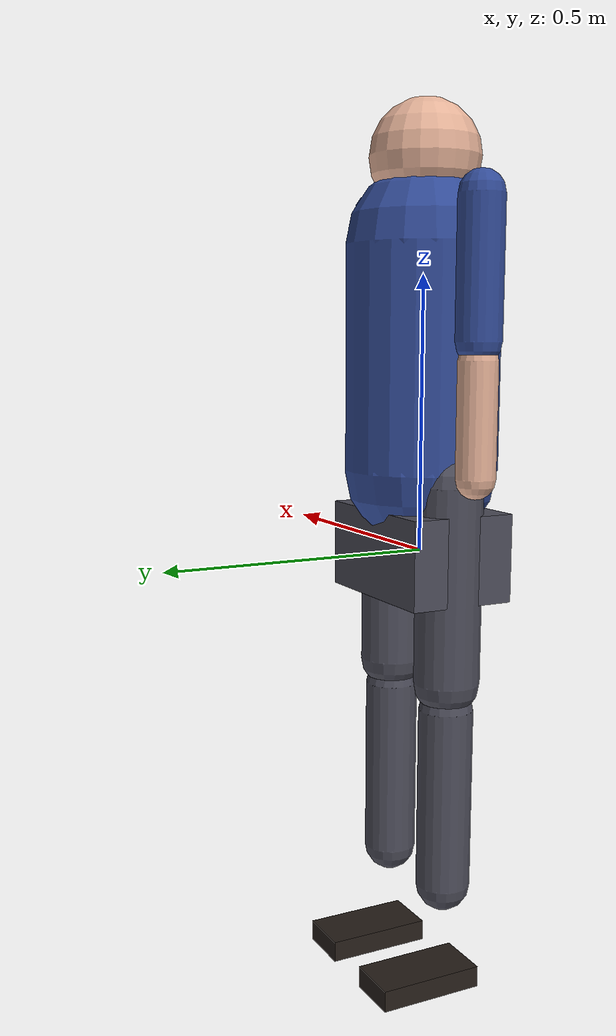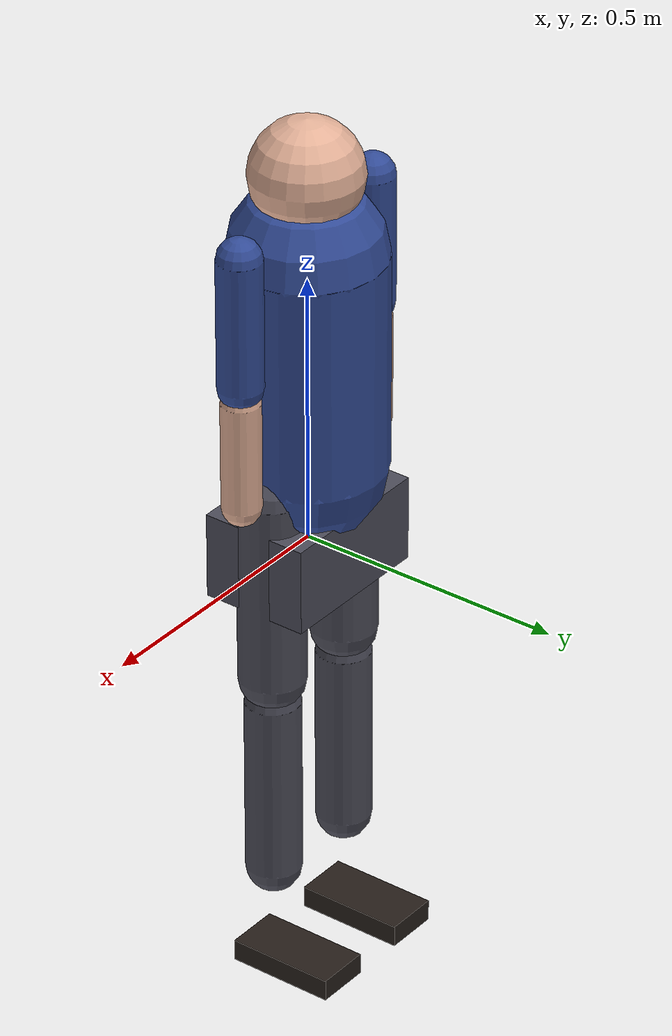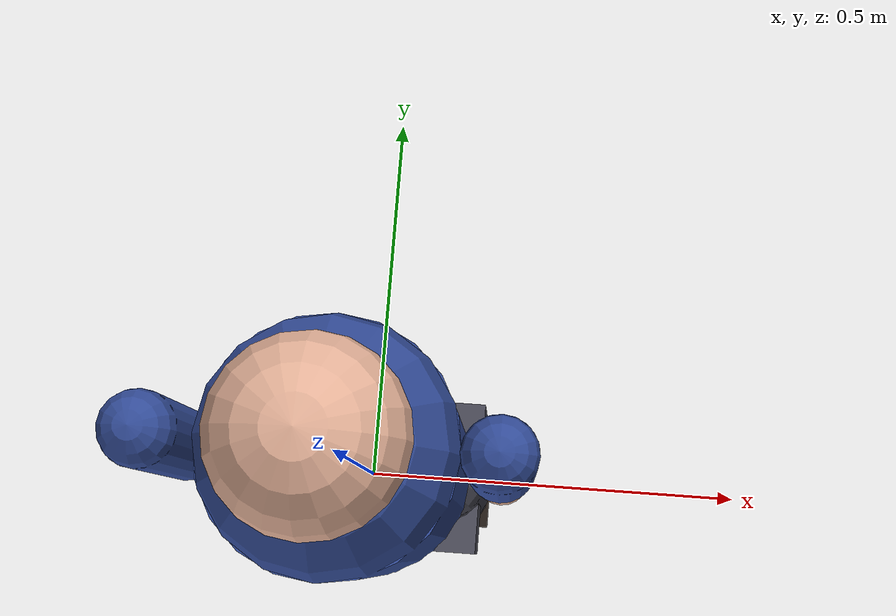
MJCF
<mujoco>
  <!-- Walking humanoid with articulated legs -->
  <compiler angle="degree"/>

  <default>
    <joint damping="2" armature="0.1"/>
    <geom friction="1 0.5 0.1" condim="3"/>
  </default>

  <asset>
    <material name="human_skin" rgba="0.9 0.7 0.6 1"/>
    <material name="human_clothes" rgba="0.2 0.3 0.6 1"/>
    <material name="human_pants" rgba="0.3 0.3 0.35 1"/>
    <material name="human_shoes" rgba="0.15 0.12 0.1 1"/>
  </asset>

  <worldbody>
    <body name="human_pelvis">
      <!-- Freejoint for walking motion -->
      <freejoint name="human_root"/>
      <inertial pos="0 0 0" mass="15" diaginertia="0.5 0.5 0.3"/>

      <!-- Pelvis/hips -->
      <geom name="pelvis" type="box" size="0.15 0.1 0.08" pos="0 0 0" material="human_pants"/>

      <!-- Torso -->
      <body name="torso" pos="0 0 0.35">
        <inertial pos="0 0 0" mass="25" diaginertia="1 1 0.5"/>
        <geom name="torso" type="capsule" size="0.14 0.2" material="human_clothes"/>

        <!-- Head -->
        <body name="head" pos="0 0 0.35">
          <inertial pos="0 0 0" mass="5" diaginertia="0.1 0.1 0.1"/>
          <geom name="head" type="sphere" size="0.1" material="human_skin"/>
        </body>

        <!-- Left arm -->
        <body name="left_upper_arm" pos="-0.18 0 0.15">
          <inertial pos="0 0 -0.1" mass="2" diaginertia="0.02 0.02 0.01"/>
          <joint name="left_shoulder" type="hinge" axis="1 0 0" range="-60 60"/>
          <geom name="left_upper" type="capsule" size="0.04 0.12" euler="0 0 0" material="human_clothes"/>

          <body name="left_lower_arm" pos="0 0 -0.25">
            <inertial pos="0 0 -0.08" mass="1.5" diaginertia="0.01 0.01 0.005"/>
            <joint name="left_elbow" type="hinge" axis="1 0 0" range="-120 0"/>
            <geom name="left_lower" type="capsule" size="0.035 0.1" material="human_skin"/>
          </body>
        </body>

        <!-- Right arm -->
        <body name="right_upper_arm" pos="0.18 0 0.15">
          <inertial pos="0 0 -0.1" mass="2" diaginertia="0.02 0.02 0.01"/>
          <joint name="right_shoulder" type="hinge" axis="1 0 0" range="-60 60"/>
          <geom name="right_upper" type="capsule" size="0.04 0.12" euler="0 0 0" material="human_clothes"/>

          <body name="right_lower_arm" pos="0 0 -0.25">
            <inertial pos="0 0 -0.08" mass="1.5" diaginertia="0.01 0.01 0.005"/>
            <joint name="right_elbow" type="hinge" axis="1 0 0" range="-120 0"/>
            <geom name="right_lower" type="capsule" size="0.035 0.1" material="human_skin"/>
          </body>
        </body>
      </body>

      <!-- Left leg -->
      <body name="left_thigh" pos="-0.1 0 -0.05">
        <inertial pos="0 0 -0.15" mass="8" diaginertia="0.1 0.1 0.05"/>
        <joint name="left_hip" type="hinge" axis="1 0 0" range="-30 90"/>
        <geom name="left_thigh" type="capsule" size="0.06 0.18" material="human_pants"/>

        <body name="left_shin" pos="0 0 -0.4">
          <inertial pos="0 0 -0.15" mass="4" diaginertia="0.05 0.05 0.02"/>
          <joint name="left_knee" type="hinge" axis="1 0 0" range="0 120"/>
          <geom name="left_shin" type="capsule" size="0.05 0.17" material="human_pants"/>

          <body name="left_foot" pos="0 0.05 -0.35">
            <inertial pos="0 0.03 0" mass="1" diaginertia="0.01 0.01 0.01"/>
            <geom name="left_foot" type="box" size="0.05 0.1 0.02" material="human_shoes"/>
          </body>
        </body>
      </body>

      <!-- Right leg -->
      <body name="right_thigh" pos="0.1 0 -0.05">
        <inertial pos="0 0 -0.15" mass="8" diaginertia="0.1 0.1 0.05"/>
        <joint name="right_hip" type="hinge" axis="1 0 0" range="-30 90"/>
        <geom name="right_thigh" type="capsule" size="0.06 0.18" material="human_pants"/>

        <body name="right_shin" pos="0 0 -0.4">
          <inertial pos="0 0 -0.15" mass="4" diaginertia="0.05 0.05 0.02"/>
          <joint name="right_knee" type="hinge" axis="1 0 0" range="0 120"/>
          <geom name="right_shin" type="capsule" size="0.05 0.17" material="human_pants"/>

          <body name="right_foot" pos="0 0.05 -0.35">
            <inertial pos="0 0.03 0" mass="1" diaginertia="0.01 0.01 0.01"/>
            <geom name="right_foot" type="box" size="0.05 0.1 0.02" material="human_shoes"/>
          </body>
        </body>
      </body>
    </body>
  </worldbody>

  <!-- ACTUATORS for walking motion -->
  <actuator>
    <!-- Leg joints for walking -->
    <position name="left_hip_ctrl" joint="left_hip" kp="200"/>
    <position name="left_knee_ctrl" joint="left_knee" kp="150"/>
    <position name="right_hip_ctrl" joint="right_hip" kp="200"/>
    <position name="right_knee_ctrl" joint="right_knee" kp="150"/>
    <!-- Arm swing -->
    <position name="left_shoulder_ctrl" joint="left_shoulder" kp="50"/>
    <position name="right_shoulder_ctrl" joint="right_shoulder" kp="50"/>
  </actuator>

  <!-- SENSORS -->
  <sensor>
    <framepos name="human_pos" objtype="body" objname="human_pelvis"/>
    <framequat name="human_orient" objtype="body" objname="human_pelvis"/>
  </sensor>
</mujoco>
